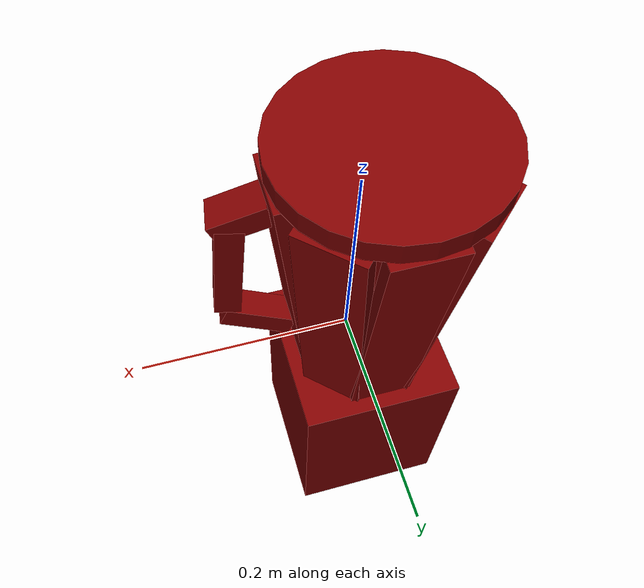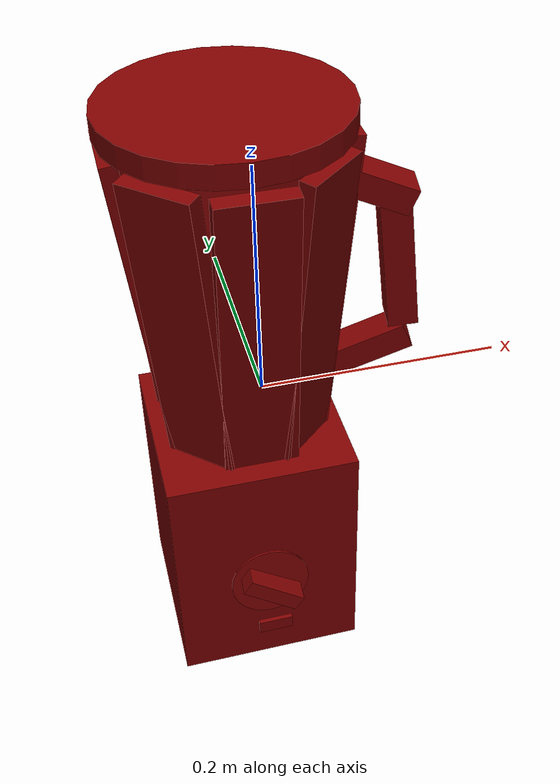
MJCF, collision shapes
<?xml version='1.0' encoding='UTF-8'?>
<mujoco model="model">
  <option timestep="0.002" gravity="0.0 0.0 -9.81"/>
  <compiler angle="radian"/>
  <asset>
    <mesh file="visuals/Blade001.obj" name="Blade001_vis"/>
    <mesh file="visuals/Body001.obj" name="Body001_vis"/>
    <mesh file="visuals/Button001.obj" name="Button001_vis"/>
    <mesh file="visuals/Jug001.obj" name="Jug001_vis"/>
    <mesh file="visuals/Jug001_Clear.obj" name="Jug001_Clear_vis"/>
    <mesh file="visuals/Knob001.obj" name="Knob001_vis"/>
    <mesh file="visuals/Lid001.obj" name="Lid001_vis"/>
    <texture file="visuals/T_BC001.png" name="Body001_material" type="2d"/>
    <material name="Body001_material" rgba="1 1 1 1.0" texture="Body001_material" shininess="0.4472135901451111" specular="0.3103448502657381"/>
    <texture file="visuals/T_BC001.png" name="Button001_material" type="2d"/>
    <material name="Button001_material" rgba="1 1 1 1.0" texture="Button001_material" shininess="0.4472135901451111" specular="0.3103448502657381"/>
    <texture file="visuals/T_BC001.png" name="Jug001_Clear_material" type="2d"/>
    <material name="Jug001_Clear_material" rgba="1 1 1 0.800000011920929" texture="Jug001_Clear_material" shininess="0.8692915439605713" specular="0.33333333333333337"/>
    <texture file="visuals/T_BC001.png" name="Jug001_material" type="2d"/>
    <material name="Jug001_material" rgba="1 1 1 1.0" texture="Jug001_material" shininess="0.4472135901451111" specular="0.3103448502657381"/>
    <texture file="visuals/T_BC001.png" name="Blade001_material" type="2d"/>
    <material name="Blade001_material" rgba="1 1 1 1.0" texture="Blade001_material" shininess="0.4472135901451111" specular="0.3103448502657381"/>
    <texture file="visuals/T_BC001.png" name="Lid001_material" type="2d"/>
    <material name="Lid001_material" rgba="1 1 1 1.0" texture="Lid001_material" shininess="0.4472135901451111" specular="0.3103448502657381"/>
    <texture file="visuals/T_BC001.png" name="Knob001_material" type="2d"/>
    <material name="Knob001_material" rgba="1 1 1 1.0" texture="Knob001_material" shininess="0.4472135901451111" specular="0.3103448502657381"/>
  </asset>
  <default>
    <default class="visual">
      <geom conaffinity="0" contype="0" group="1" type="mesh"/>
    </default>
    <default class="collision">
      <geom group="0" rgba="0.5 0 0 0.5"/>
    </default>
    <default class="spawn">
      <geom group="0" rgba="1 1 1 0.5" contype="0" conaffinity="0"/>
      <site group="0" rgba="1 1 1 0.5"/>
    </default>
    <default class="region">
      <geom group="1" conaffinity="0" contype="0" rgba="0 1 0 0"/>
    </default>
  </default>
  <worldbody>
    <body>
      <body name="object">
        <geom mesh="Body001_vis" type="mesh" solimp="0.998 0.998 0.001" solref="0.001 1" friction="0.95 0.3 0.1" class="visual" material="Body001_material"/>
        <geom class="collision" type="box" pos="-0.015146 0.006002 -0.137518" size="0.07678362727165222 0.07831722497940063 0.1044483631849289" quat="1.0 0.0 0.0 0.0" density="100"/>
        <body name="Button001">
          <joint axis="0.0 1.0 0.0" pos="-0.013805 -0.080653 -0.193735" limited="true" name="Button001_joint" range="0.0 0.002" type="slide" damping="1" frictionloss="1" armature=".01" stiffness="0.05"/>
          <geom mesh="Button001_vis" type="mesh" solimp="0.998 0.998 0.001" solref="0.001 1" friction="0.95 0.3 0.1" class="visual" material="Button001_material"/>
          <geom class="collision" type="box" pos="-0.013313 -0.084084 -0.193731" size="0.014210652559995651 0.0018777173245325685 0.005925006233155727" quat="1.0 0.0 0.0 0.0" density="100"/>
        </body>
        <body name="Jug001_Clear">
          <geom class="region" name="reg_int" type="box" pos="-0.014474 0.006041999999999999 0.09722" size="0.05025 0.048957 0.131639"/>
          <joint axis="0.0 0.0 1.0" pos="0.000000 0.005557 0.000000" limited="true" name="Jug001_Clear_joint" range="0.0 0.1" type="slide" damping="1" frictionloss="1" armature=".01" stiffness="0.05"/>
          <geom mesh="Jug001_Clear_vis" type="mesh" solimp="0.998 0.998 0.001" solref="0.001 1" friction="0.95 0.3 0.1" class="visual" material="Jug001_Clear_material"/>
          <geom class="collision" type="box" pos="0.105700 -0.014360 0.117638" size="0.011882654391229153 0.015193642117083073 0.05532687529921532" quat="0.9955431222915649 -0.0037091949488967657 -0.0444367341697216 -0.08309933543205261" density="100"/>
          <geom class="collision" type="box" pos="0.084540 -0.010970 0.037271" size="0.03337487205862999 0.013104078359901905 0.010871321894228458" quat="0.9774189591407776 -0.016214270144701004 -0.19424954056739807 -0.08158649504184723" density="100"/>
          <geom class="collision" type="box" pos="0.091167 -0.011917 0.179088" size="0.02543867938220501 0.015193642117083073 0.01057860441505909" quat="0.9774189591407776 0.016214268282055855 0.19424955546855927 -0.08158648014068604" density="100"/>
          <geom class="collision" type="box" pos="-0.013697 0.080080 0.099960" size="0.029443033039569855 0.006673652678728104 0.12612296640872955" quat="0.9985349774360657 -0.054110053926706314 -0.0 0.0" density="100"/>
          <geom class="collision" type="box" pos="-0.013697 -0.065841 0.096158" size="0.029443033039569855 0.006501862313598394 0.12452355027198792" quat="0.9985349774360657 0.05411006137728691 0.0 0.0" density="100"/>
          <geom class="collision" type="box" pos="-0.086666 0.005596 0.098752" size="0.029443033039569855 0.006501862313598394 0.12713243067264557" quat="0.7060708999633789 0.038261592388153076 -0.03826158866286278 -0.7060708403587341" density="100"/>
          <geom class="collision" type="box" pos="0.056404 0.005596 0.098988" size="0.029443033039569855 0.006568617653101683 0.127089262008667" quat="0.7060708999633789 -0.03826158493757248 0.03826158493757248 -0.7060708403587341" density="100"/>
          <geom class="collision" type="box" pos="0.035816 0.059287 0.098937" size="0.029443033039569855 0.006563021335750818 0.12714074552059174" quat="0.9271512031555176 -0.050241824239492416 0.020091267302632332 -0.37075966596603394" density="100"/>
          <geom class="collision" type="box" pos="-0.064435 -0.045930 0.097436" size="0.029443033039569855 0.006501862313598394 0.12580914795398712" quat="0.9271512031555176 0.05024183169007301 -0.02009126916527748 -0.37075966596603394" density="100"/>
          <geom class="collision" type="box" pos="0.033017 -0.046616 0.097899" size="0.029443034902215004 0.006501862313598394 0.1262749880552292" quat="0.9296003580093384 0.05037453770637512 0.019756143912672997 0.36457544565200806" density="100"/>
          <geom class="collision" type="box" pos="-0.065313 0.060508 0.100361" size="0.029443034902215004 0.006716929841786623 0.12572482228279114" quat="0.9296003580093384 -0.050374530255794525 -0.019756142050027847 0.36457544565200806" density="100"/>
          <geom class="collision" type="cylinder" pos="-0.016252 0.005672 -0.027869" size="0.057328250259160995 0.0008909525349736214" quat="1.0 0.0 0.0 0.0" density="100"/>
          <body name="Jug001">
            <geom mesh="Jug001_vis" type="mesh" solimp="0.998 0.998 0.001" solref="0.001 1" friction="0.95 0.3 0.1" class="visual" material="Jug001_material"/>
            <geom class="collision" type="cylinder" pos="-0.016252 0.005672 -0.025015" size="0.012912442907691002 0.004275952931493521" quat="1.0 0.0 0.0 0.0" density="100"/>
            <body name="Blade001">
              <joint axis="0.0 0.0 1.0" pos="-0.016025 0.005126 -0.017553" limited="false" name="Blade001_joint" range="0 360" type="hinge" damping="1" frictionloss="1" armature=".01" stiffness="0.05"/>
              <geom mesh="Blade001_vis" type="mesh" solimp="0.998 0.998 0.001" solref="0.001 1" friction="0.95 0.3 0.1" class="visual" material="Blade001_material"/>
              <geom class="collision" type="cylinder" pos="-0.016252 0.005672 -0.011761" size="0.010120311751961708 0.006583241745829582" quat="1.0 0.0 0.0 0.0" density="100"/>
            </body>
          </body>
          <body name="Lid001">
            <joint axis="0.0 0.0 1.0" pos="-0.014420 0.008559 0.220616" limited="true" name="Lid001_joint" range="0.0 0.1" type="slide" damping="1" frictionloss="1" armature=".01" stiffness="0.05"/>
            <geom mesh="Lid001_vis" type="mesh" solimp="0.998 0.998 0.001" solref="0.001 1" friction="0.95 0.3 0.1" class="visual" material="Lid001_material"/>
            <geom class="collision" type="cylinder" pos="-0.015206 0.008759 0.238224" size="0.09246478974819183 0.0091631431132555" quat="1.0 0.0 0.0 0.0" density="100"/>
          </body>
        </body>
        <body name="Knob001">
          <joint axis="0.0 0.9962906837463379 -0.08605146408081055" pos="-0.016087 -0.080442 -0.140440" limited="true" name="Knob001_joint" range="0.0 4.886921905584122" type="hinge" damping="0.05" armature="0.001" springref="-0.1"/>
          <geom mesh="Knob001_vis" type="mesh" solimp="0.998 0.998 0.001" solref="0.001 1" friction="0.95 0.3 0.1" class="visual" material="Knob001_material"/>
          <geom class="collision" type="cylinder" pos="-0.016168 -0.082096 -0.140580" size="0.03245633468031883 0.0008922007982619107" quat="0.7324968576431274 0.6807703971862793 0.0 0.0" density="100"/>
          <geom class="collision" type="box" pos="-0.016136 -0.088539 -0.139845" size="0.006805765442550182 0.01165817677974701 0.024993430823087692" quat="0.8780016303062439 -0.037846919149160385 -0.47671639919281006 -0.020549217239022255" density="100"/>
        </body>
        <geom class="region" name="reg_main" type="box" pos="-0.020574999999999996 0.007164499999999997 0.0" size="0.099675 0.0939065 0.248443"/>
      </body>
    </body>
  </worldbody>
  <actuator>
    <motor name="Button001_joint_actuator" joint="Button001_joint" gear="0.1"/>
    <motor name="Jug001_Clear_joint_actuator" joint="Jug001_Clear_joint" gear="100"/>
    <motor name="Knob001_joint_actuator" joint="Knob001_joint" gear="10"/>
    <motor name="Lid001_joint_actuator" joint="Lid001_joint" gear="20"/>
    <motor name="Blade001_joint_actuator" joint="Blade001_joint" gear="10"/>
  </actuator>
</mujoco>
